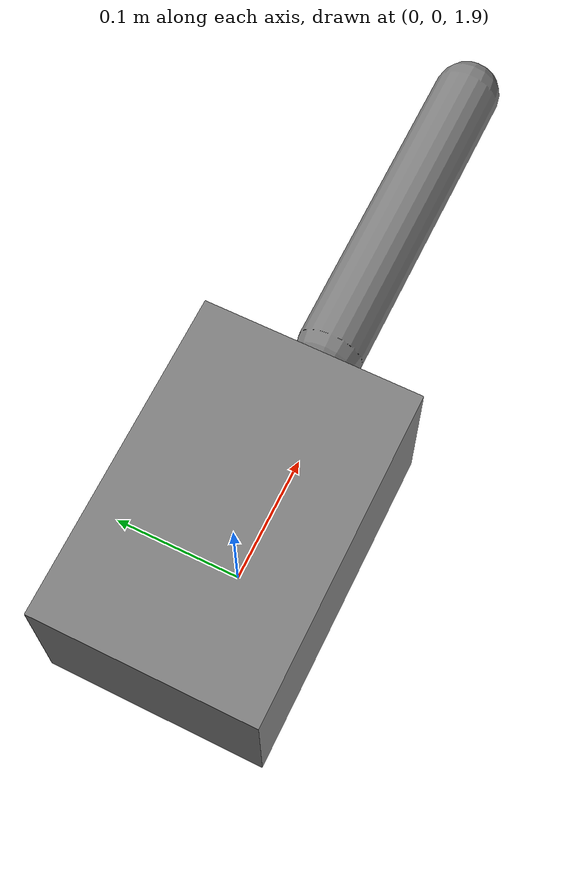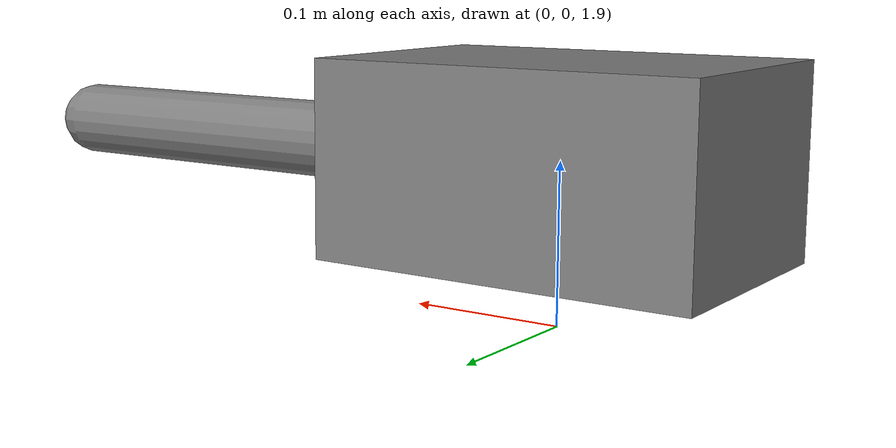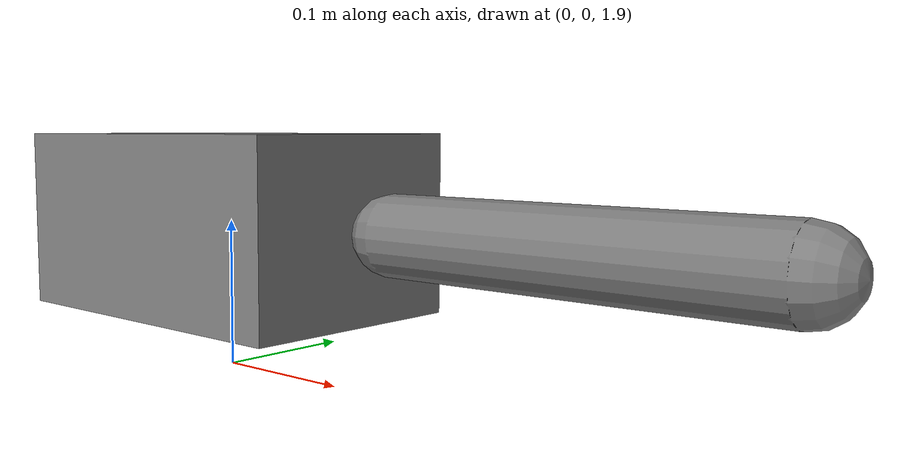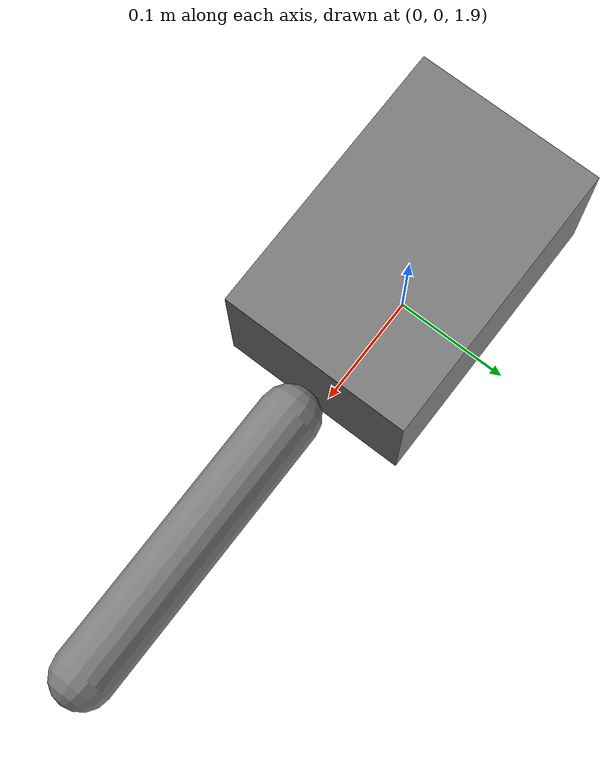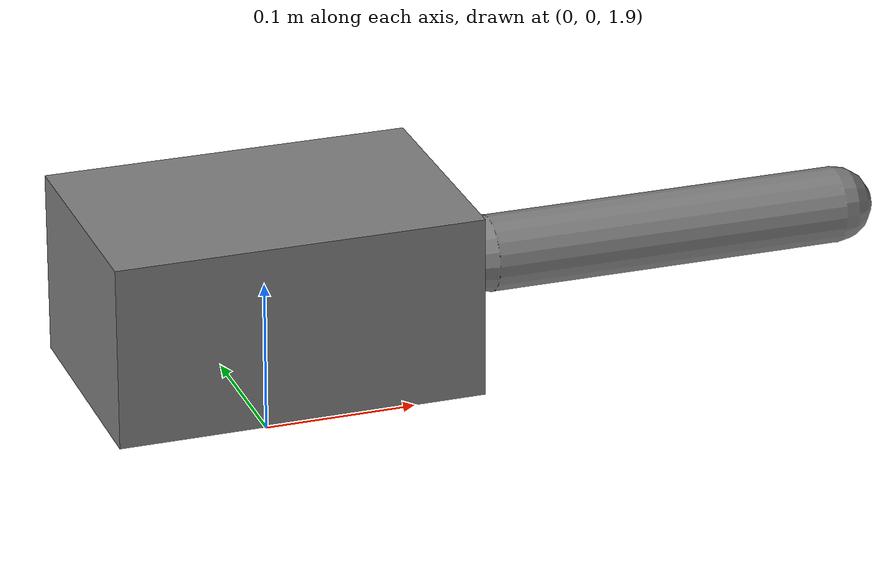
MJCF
<mujoco model="rigid_body_probe">
  <compiler angle="radian"/>
  <option timestep="0.001" gravity="0 0 -9.81" integrator="Euler"/>
  <worldbody>
    <geom name="floor" type="plane" size="10 10 0.1" friction="0.8 0 0"/>
    <body name="torso" pos="0 0 2">
      <freejoint name="root"/>
      <inertial pos="0.02 0 0" mass="2" diaginertia="0.02 0.03 0.04"/>
      <geom name="torso_geom" type="box" size="0.12 0.08 0.06" friction="0.8 0 0"/>
      <body name="arm" pos="0.15 0 0">
        <joint name="hinge" type="hinge" axis="0 1 0" range="-1.2 1.2" damping="0.03" armature="0.01"/>
        <inertial pos="0.12 0 0" mass="0.5" diaginertia="0.001 0.004 0.004"/>
        <geom name="arm_geom" type="capsule" fromto="0 0 0 0.24 0 0" size="0.025" friction="0.8 0 0"/>
      </body>
    </body>
  </worldbody>
  <actuator>
    <motor name="hinge_motor" joint="hinge" gear="2" ctrllimited="true" ctrlrange="-1 1" forcelimited="true" forcerange="-0.8 0.8"/>
  </actuator>
</mujoco>
